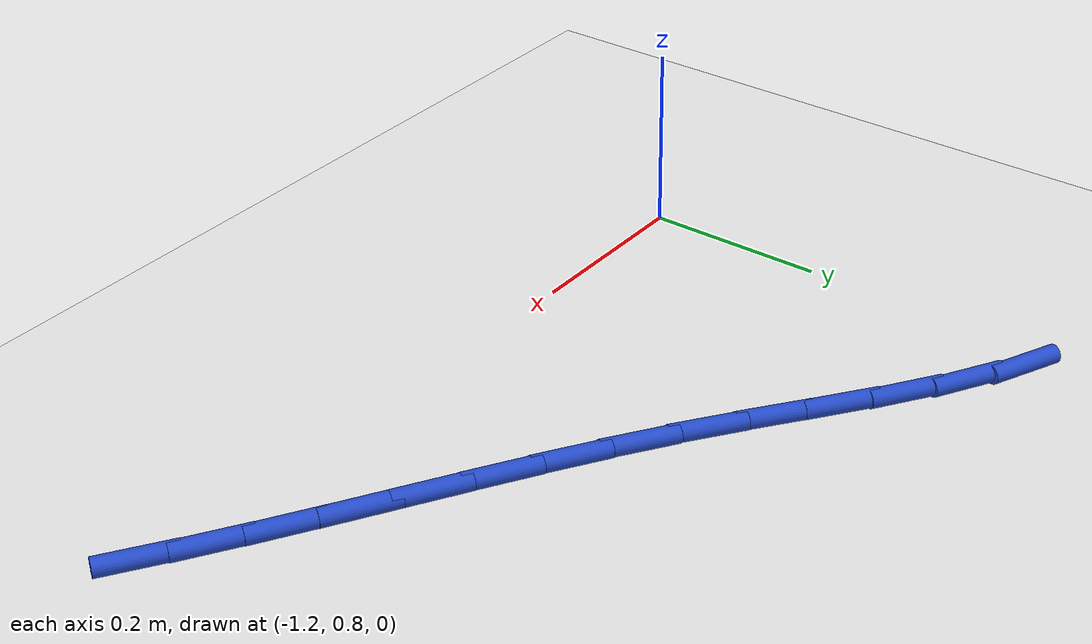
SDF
<sdf version="1.6">
 <world name="default">
  <model name="ground_plane">
   <static>1</static>
   <link name="link">
    <collision name="collision">
     <geometry><plane><normal>0 0 1</normal><size>100 100</size></plane></geometry>
     <surface><friction><ode><mu>100</mu><mu2>50</mu2></ode></friction></surface>
    </collision>
    <visual name="visual">
     <cast_shadows>0</cast_shadows>
     <geometry><plane><normal>0 0 1</normal><size>100 100</size></plane></geometry>
     <material>
      <script><uri>file://media/materials/scripts/gazebo.material</uri><name>Gazebo/WhiteGlow</name></script>
     </material>
    </visual>
   </link>
  </model>
  <model name="line">
   <link name="link_14">
    <pose>-0.41720848470792377 0.7857829901350563 0.01 0 1.57 -0.595483720717601</pose>
    <collision name="collision">
     <geometry><cylinder><radius>0.01</radius><length>0.08</length></cylinder></geometry>
    </collision>
    <visual name="visual">
     <material>
      <script><name>Gazebo/Blue</name><uri>file://media/materials/scripts/gazebo.material</uri></script>
     </material>
     <geometry><cylinder><radius>0.01</radius><length>0.08</length></cylinder></geometry>
    </visual>
   </link>
   <link name="link_15">
    <pose>-0.47241276848291924 0.8231853880325907 0.01 0 1.57 -0.569891139401351</pose>
    <collision name="collision">
     <geometry><cylinder><radius>0.01</radius><length>0.08</length></cylinder></geometry>
    </collision>
    <visual name="visual">
     <material>
      <script><name>Gazebo/Blue</name><uri>file://media/materials/scripts/gazebo.material</uri></script>
     </material>
     <geometry><cylinder><radius>0.01</radius><length>0.08</length></cylinder></geometry>
    </visual>
   </link>
   <link name="link_16">
    <pose>-0.5291529075904741 0.8595453189961532 0.01 0 1.57 -0.5534713137196734</pose>
    <collision name="collision">
     <geometry><cylinder><radius>0.01</radius><length>0.08</length></cylinder></geometry>
    </collision>
    <visual name="visual">
     <material>
      <script><name>Gazebo/Blue</name><uri>file://media/materials/scripts/gazebo.material</uri></script>
     </material>
     <geometry><cylinder><radius>0.01</radius><length>0.08</length></cylinder></geometry>
    </visual>
   </link>
   <link name="link_17">
    <pose>-0.587008476128282 0.895293788397257 0.01 0 1.57 -0.5458977582802892</pose>
    <collision name="collision">
     <geometry><cylinder><radius>0.01</radius><length>0.08</length></cylinder></geometry>
    </collision>
    <visual name="visual">
     <material>
      <script><name>Gazebo/Blue</name><uri>file://media/materials/scripts/gazebo.material</uri></script>
     </material>
     <geometry><cylinder><radius>0.01</radius><length>0.08</length></cylinder></geometry>
    </visual>
   </link>
   <link name="link_18">
    <pose>-0.6455590481940361 0.9308618016074148 0.01 0 1.57 -0.546937047115744</pose>
    <collision name="collision">
     <geometry><cylinder><radius>0.01</radius><length>0.08</length></cylinder></geometry>
    </collision>
    <visual name="visual">
     <material>
      <script><name>Gazebo/Blue</name><uri>file://media/materials/scripts/gazebo.material</uri></script>
     </material>
     <geometry><cylinder><radius>0.01</radius><length>0.08</length></cylinder></geometry>
    </visual>
   </link>
   <link name="link_19">
    <pose>-0.7043841978854293 0.9666803639981391 0.01 0 1.57 -0.5564586580571826</pose>
    <collision name="collision">
     <geometry><cylinder><radius>0.01</radius><length>0.08</length></cylinder></geometry>
    </collision>
    <visual name="visual">
     <material>
      <script><name>Gazebo/Blue</name><uri>file://media/materials/scripts/gazebo.material</uri></script>
     </material>
     <geometry><cylinder><radius>0.01</radius><length>0.08</length></cylinder></geometry>
    </visual>
   </link>
   <link name="link_20">
    <pose>-0.7630634993001555 1.0031804809409433 0.01 0 1.57 -0.5744276895150381</pose>
    <collision name="collision">
     <geometry><cylinder><radius>0.01</radius><length>0.08</length></cylinder></geometry>
    </collision>
    <visual name="visual">
     <material>
      <script><name>Gazebo/Blue</name><uri>file://media/materials/scripts/gazebo.material</uri></script>
     </material>
     <geometry><cylinder><radius>0.01</radius><length>0.08</length></cylinder></geometry>
    </visual>
   </link>
   <link name="link_21">
    <pose>-0.8211765265359074 1.0407931578073395 0.01 0 1.57 -0.6008820759606489</pose>
    <collision name="collision">
     <geometry><cylinder><radius>0.01</radius><length>0.08</length></cylinder></geometry>
    </collision>
    <visual name="visual">
     <material>
      <script><name>Gazebo/Blue</name><uri>file://media/materials/scripts/gazebo.material</uri></script>
     </material>
     <geometry><cylinder><radius>0.01</radius><length>0.08</length></cylinder></geometry>
    </visual>
   </link>
   <link name="link_22">
    <pose>-0.878302853690379 1.0799493999688417 0.01 0 1.57 -0.6333779714032723</pose>
    <collision name="collision">
     <geometry><cylinder><radius>0.01</radius><length>0.08</length></cylinder></geometry>
    </collision>
    <visual name="visual">
     <material>
      <script><name>Gazebo/Blue</name><uri>file://media/materials/scripts/gazebo.material</uri></script>
     </material>
     <geometry><cylinder><radius>0.01</radius><length>0.08</length></cylinder></geometry>
    </visual>
   </link>
   <link name="link_23">
    <pose>-0.9341054888137583 1.1209253448050203 0.01 0 1.57 -0.6498465322540856</pose>
    <collision name="collision">
     <geometry><cylinder><radius>0.01</radius><length>0.08</length></cylinder></geometry>
    </collision>
    <visual name="visual">
     <material>
      <script><name>Gazebo/Blue</name><uri>file://media/materials/scripts/gazebo.material</uri></script>
     </material>
     <geometry><cylinder><radius>0.01</radius><length>0.08</length></cylinder></geometry>
    </visual>
   </link>
   <link name="link_24">
    <pose>-0.9889836188621598 1.1626306530338506 0.01 0 1.57 -0.6385803141245912</pose>
    <collision name="collision">
     <geometry><cylinder><radius>0.01</radius><length>0.08</length></cylinder></geometry>
    </collision>
    <visual name="visual">
     <material>
      <script><name>Gazebo/Blue</name><uri>file://media/materials/scripts/gazebo.material</uri></script>
     </material>
     <geometry><cylinder><radius>0.01</radius><length>0.08</length></cylinder></geometry>
    </visual>
   </link>
   <link name="link_25">
    <pose>-1.0437197632496906 1.2032634533621789 0.01 0 1.57 -0.598335374237335</pose>
    <collision name="collision">
     <geometry><cylinder><radius>0.01</radius><length>0.08</length></cylinder></geometry>
    </collision>
    <visual name="visual">
     <material>
      <script><name>Gazebo/Blue</name><uri>file://media/materials/scripts/gazebo.material</uri></script>
     </material>
     <geometry><cylinder><radius>0.01</radius><length>0.08</length></cylinder></geometry>
    </visual>
   </link>
   <link name="link_26">
    <pose>-1.0990997393609063 1.241015752887539 0.01 0 1.57 -0.5270869935580791</pose>
    <collision name="collision">
     <geometry><cylinder><radius>0.01</radius><length>0.08</length></cylinder></geometry>
    </collision>
    <visual name="visual">
     <material>
      <script><name>Gazebo/Blue</name><uri>file://media/materials/scripts/gazebo.material</uri></script>
     </material>
     <geometry><cylinder><radius>0.01</radius><length>0.08</length></cylinder></geometry>
    </visual>
   </link>
   <link name="link_27">
    <pose>-1.155909364580362 1.274079558707465 0.01 0 1.57 -0.4229388501787489</pose>
    <collision name="collision">
     <geometry><cylinder><radius>0.01</radius><length>0.08</length></cylinder></geometry>
    </collision>
    <visual name="visual">
     <material>
      <script><name>Gazebo/Blue</name><uri>file://media/materials/scripts/gazebo.material</uri></script>
     </material>
     <geometry><cylinder><radius>0.01</radius><length>0.08</length></cylinder></geometry>
    </visual>
   </link>
  </model>
 </world>
</sdf>
